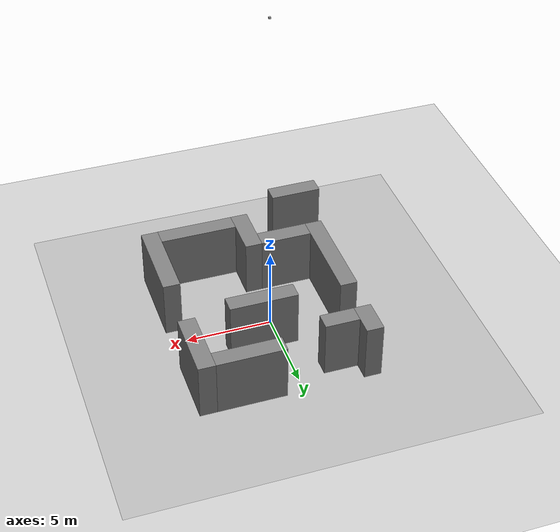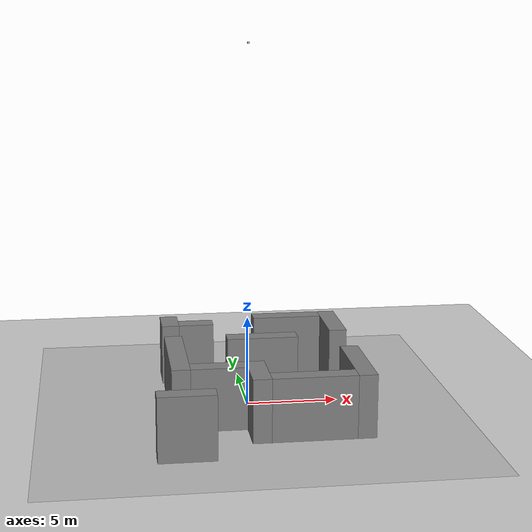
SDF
<sdf version="1.6">
 <world name="camera_sensor">
  <physics name="1ms" type="ignored">
   <max_step_size>0.01</max_step_size>
   <real_time_factor>1.0</real_time_factor>
  </physics>
  <plugin filename="gz-sim-physics-system" name="gz::sim::systems::Physics"/>
  <plugin filename="gz-sim-sensors-system" name="gz::sim::systems::Sensors">
   <render_engine>ogre2</render_engine>
  </plugin>
  <plugin filename="gz-sim-user-commands-system" name="gz::sim::systems::UserCommands"/>
  <plugin filename="gz-sim-scene-broadcaster-system" name="gz::sim::systems::SceneBroadcaster"/>
  <scene><ambient>1.0 1.0 1.0</ambient><background>0.8 0.8 0.8</background><grid>true</grid></scene>
  <model name="ground_plane">
   <static>true</static>
   <link name="link">
    <collision name="collision">
     <geometry><plane><normal>0 0 1</normal><size>100 100</size></plane></geometry>
    </collision>
    <visual name="visual">
     <geometry><plane><normal>0 0 1</normal><size>100 100</size></plane></geometry>
     <material>
      <ambient>0.8 0.8 0.8 1</ambient>
      <diffuse>0.8 0.8 0.8 1</diffuse>
      <specular>0.8 0.8 0.8 1</specular>
     </material>
    </visual>
   </link>
  </model>
  <model name="camera">
   <static>true</static>
   <pose>0 0 20 0 1.57 0</pose>
   <link name="link">
    <pose>0.05 0.05 0.05 0 0 0</pose>
    <inertial>
     <mass>0.1</mass>
     <inertia><ixx>0.000166667</ixx><iyy>0.000166667</iyy><izz>0.000166667</izz></inertia>
    </inertial>
    <collision name="collision"><geometry><box><size>0.1 0.1 0.1</size></box></geometry></collision>
    <visual name="visual"><geometry><box><size>0.1 0.1 0.1</size></box></geometry></visual>
    <sensor name="camera" type="camera">
     <camera>
      <horizontal_fov>1.047</horizontal_fov>
      <image><width>1000</width><height>1000</height></image>
      <clip><near>0.1</near><far>100</far></clip>
     </camera>
     <always_on>1</always_on>
     <update_rate>30</update_rate>
     <visualize>false</visualize>
     <topic>camera</topic>
    </sensor>
   </link>
  </model>
  <model name="box1">
   <pose>5.5 4 1.72 0 0 0</pose>
   <link name="box_link1">
    <inertial>
     <inertia><ixx>0.16666</ixx><ixy>0</ixy><ixz>0</ixz><iyy>0.16666</iyy><iyz>0</iyz><izz>0.16666</izz></inertia>
     <mass>100.0</mass>
    </inertial>
    <collision name="box_collision1"><geometry><box><size>1 4 3.5</size></box></geometry></collision>
    <visual name="box_visual1">
     <geometry><box><size>1 4 3.5</size></box></geometry>
     <material>
      <ambient>0.5 0.5 0.5 1</ambient>
      <diffuse>0.5 0.5 0.5 1</diffuse>
      <specular>0.5 0.5 0.5 1</specular>
     </material>
    </visual>
   </link>
  </model>
  <model name="box2">
   <pose>3 5.5 1.72 0 0 0</pose>
   <link name="box_link2">
    <inertial>
     <inertia><ixx>0.16666</ixx><ixy>0</ixy><ixz>0</ixz><iyy>0.16666</iyy><iyz>0</iyz><izz>0.16666</izz></inertia>
     <mass>100.0</mass>
    </inertial>
    <collision name="box_collision2"><geometry><box><size>4 1 3.5</size></box></geometry></collision>
    <visual name="box_visual2">
     <geometry><box><size>4 1 3.5</size></box></geometry>
     <material>
      <ambient>0.5 0.5 0.5 1</ambient>
      <diffuse>0.5 0.5 0.5 1</diffuse>
      <specular>0.5 0.5 0.5 1</specular>
     </material>
    </visual>
   </link>
  </model>
  <model name="box3">
   <pose>1 1.5 1.72 0 0 1.57</pose>
   <link name="box_link3">
    <inertial>
     <inertia><ixx>0.16666</ixx><ixy>0</ixy><ixz>0</ixz><iyy>0.16666</iyy><iyz>0</iyz><izz>0.16666</izz></inertia>
     <mass>100.0</mass>
    </inertial>
    <collision name="box_collision3"><geometry><box><size>1 4 3.5</size></box></geometry></collision>
    <visual name="box_visual3">
     <geometry><box><size>1 4 3.5</size></box></geometry>
     <material>
      <ambient>0.5 0.5 0.5 1</ambient>
      <diffuse>0.5 0.5 0.5 1</diffuse>
      <specular>0.5 0.5 0.5 1</specular>
     </material>
    </visual>
   </link>
  </model>
  <model name="box4">
   <pose>5.5 -3.5 1.72 0 0 1.57</pose>
   <link name="box_link4">
    <inertial>
     <inertia><ixx>0.16666</ixx><ixy>0</ixy><ixz>0</ixz><iyy>0.16666</iyy><iyz>0</iyz><izz>0.16666</izz></inertia>
     <mass>100.0</mass>
    </inertial>
    <collision name="box_collision4"><geometry><box><size>5 1 3.5</size></box></geometry></collision>
    <visual name="box_visual4">
     <geometry><box><size>5 1 3.5</size></box></geometry>
     <material>
      <ambient>0.5 0.5 0.5 1</ambient>
      <diffuse>0.5 0.5 0.5 1</diffuse>
      <specular>0.5 0.5 0.5 1</specular>
     </material>
    </visual>
   </link>
  </model>
  <model name="box5">
   <pose>-4 -1 1.72 0 0 0</pose>
   <link name="box_link5">
    <inertial>
     <inertia><ixx>0.16666</ixx><ixy>0</ixy><ixz>0</ixz><iyy>0.16666</iyy><iyz>0</iyz><izz>0.16666</izz></inertia>
     <mass>100.0</mass>
    </inertial>
    <collision name="box_collision5"><geometry><box><size>1 6 3.5</size></box></geometry></collision>
    <visual name="box_visual5">
     <geometry><box><size>1 6 3.5</size></box></geometry>
     <material>
      <ambient>0.5 0.5 0.5 1</ambient>
      <diffuse>0.5 0.5 0.5 1</diffuse>
      <specular>0.5 0.5 0.5 1</specular>
     </material>
    </visual>
   </link>
  </model>
  <model name="box6">
   <pose>-4 5 1.72 0 0 0</pose>
   <link name="box_link6">
    <inertial>
     <inertia><ixx>0.16666</ixx><ixy>0</ixy><ixz>0</ixz><iyy>0.16666</iyy><iyz>0</iyz><izz>0.16666</izz></inertia>
     <mass>100.0</mass>
    </inertial>
    <collision name="box_collision6"><geometry><box><size>1 2 3.5</size></box></geometry></collision>
    <visual name="box_visual6">
     <geometry><box><size>1 2 3.5</size></box></geometry>
     <material>
      <ambient>0.5 0.5 0.5 1</ambient>
      <diffuse>0.5 0.5 0.5 1</diffuse>
      <specular>0.5 0.5 0.5 1</specular>
     </material>
    </visual>
   </link>
  </model>
  <model name="box10">
   <pose>-2.5 4.5 1.72 0 0 0</pose>
   <link name="box_link10">
    <inertial>
     <inertia><ixx>0.16666</ixx><ixy>0</ixy><ixz>0</ixz><iyy>0.16666</iyy><iyz>0</iyz><izz>0.16666</izz></inertia>
     <mass>100.0</mass>
    </inertial>
    <collision name="box_collision10"><geometry><box><size>2 1 3.5</size></box></geometry></collision>
    <visual name="box_visual10">
     <geometry><box><size>2 1 3.5</size></box></geometry>
     <material>
      <ambient>0.5 0.5 0.5 1</ambient>
      <diffuse>0.5 0.5 0.5 1</diffuse>
      <specular>0.5 0.5 0.5 1</specular>
     </material>
    </visual>
   </link>
  </model>
  <model name="box7">
   <pose>0 -4.5 1.72 0 0 0</pose>
   <link name="box_link7">
    <inertial>
     <inertia><ixx>0.16666</ixx><ixy>0</ixy><ixz>0</ixz><iyy>0.16666</iyy><iyz>0</iyz><izz>0.16666</izz></inertia>
     <mass>100.0</mass>
    </inertial>
    <collision name="box_collision7"><geometry><box><size>1 3 3.5</size></box></geometry></collision>
    <visual name="box_visual7">
     <geometry><box><size>1 3 3.5</size></box></geometry>
     <material>
      <ambient>0.5 0.5 0.5 1</ambient>
      <diffuse>0.5 0.5 0.5 1</diffuse>
      <specular>0.5 0.5 0.5 1</specular>
     </material>
    </visual>
   </link>
  </model>
  <model name="box8">
   <pose>-2 -3.5 1.72 0 0 0</pose>
   <link name="box_link8">
    <inertial>
     <inertia><ixx>0.16666</ixx><ixy>0</ixy><ixz>0</ixz><iyy>0.16666</iyy><iyz>0</iyz><izz>0.16666</izz></inertia>
     <mass>100.0</mass>
    </inertial>
    <collision name="box_collision8"><geometry><box><size>3 1 3.5</size></box></geometry></collision>
    <visual name="box_visual8">
     <geometry><box><size>3 1 3.5</size></box></geometry>
     <material>
      <ambient>0.5 0.5 0.5 1</ambient>
      <diffuse>0.5 0.5 0.5 1</diffuse>
      <specular>0.5 0.5 0.5 1</specular>
     </material>
    </visual>
   </link>
  </model>
  <model name="box9">
   <pose>2.75 -5.5 1.72 0 0 0</pose>
   <link name="box_link9">
    <inertial>
     <inertia><ixx>0.16666</ixx><ixy>0</ixy><ixz>0</ixz><iyy>0.16666</iyy><iyz>0</iyz><izz>0.16666</izz></inertia>
     <mass>100.0</mass>
    </inertial>
    <collision name="box_collision9"><geometry><box><size>4.5 1 3.5</size></box></geometry></collision>
    <visual name="box_visual9">
     <geometry><box><size>4.5 1 3.5</size></box></geometry>
     <material>
      <ambient>0.5 0.5 0.5 1</ambient>
      <diffuse>0.5 0.5 0.5 1</diffuse>
      <specular>0.5 0.5 0.5 1</specular>
     </material>
    </visual>
   </link>
  </model>
  <model name="box12">
   <pose>-4 -7.5 1.72 0 0 0</pose>
   <link name="box_link12">
    <inertial>
     <inertia><ixx>0.16666</ixx><ixy>0</ixy><ixz>0</ixz><iyy>0.16666</iyy><iyz>0</iyz><izz>0.16666</izz></inertia>
     <mass>100.0</mass>
    </inertial>
    <collision name="box_collision12"><geometry><box><size>3 1 3.5</size></box></geometry></collision>
    <visual name="box_visual12">
     <geometry><box><size>3 1 3.5</size></box></geometry>
     <material>
      <ambient>0.5 0.5 0.5 1</ambient>
      <diffuse>0.5 0.5 0.5 1</diffuse>
      <specular>0.5 0.5 0.5 1</specular>
     </material>
    </visual>
   </link>
  </model>
  <include><uri>model://arena</uri><name>arena</name><pose>0 0 0.02 0 0 -1.57</pose></include>
 </world>
</sdf>

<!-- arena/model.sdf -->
<sdf version='1.6'>
  <model name='arena'>
    <link name='link_0'>
      <pose frame=''>0 0 0 0 -0 0</pose>
      <self_collide>0</self_collide>
      <enable_wind>0</enable_wind>
      <kinematic>0</kinematic>
      <gravity>1</gravity>
      <inertial>
        <mass>1</mass>
        <pose frame=''>0 0 0 0 -0 0</pose>
        <inertia>
          <ixx>1</ixx>
          <ixy>0</ixy>
          <ixz>0</ixz>
          <iyy>1</iyy>
          <iyz>0</iyz>
          <izz>1</izz>
        </inertia>
      </inertial>
      <visual name='visual'>
        <pose frame=''>0 0 0 0 -0 0</pose>
        <geometry>
          <mesh>
            <uri>model://arena/meshes/arena.dae</uri>
            <scale>1.85 1.85 1.85</scale>
          </mesh>
        </geometry>
        <transparency>0</transparency>
        <cast_shadows>False</cast_shadows>
      </visual>
      <collision name="collision">
        <geometry>
          <mesh>
            <uri>model://arena/meshes/arena.dae</uri>
            <scale>1.85 1.85 1.85</scale>
          </mesh>
        </geometry>
      </collision>
    </link>
    <static>1</static>
    <allow_auto_disable>1</allow_auto_disable>
  </model>

</sdf>
